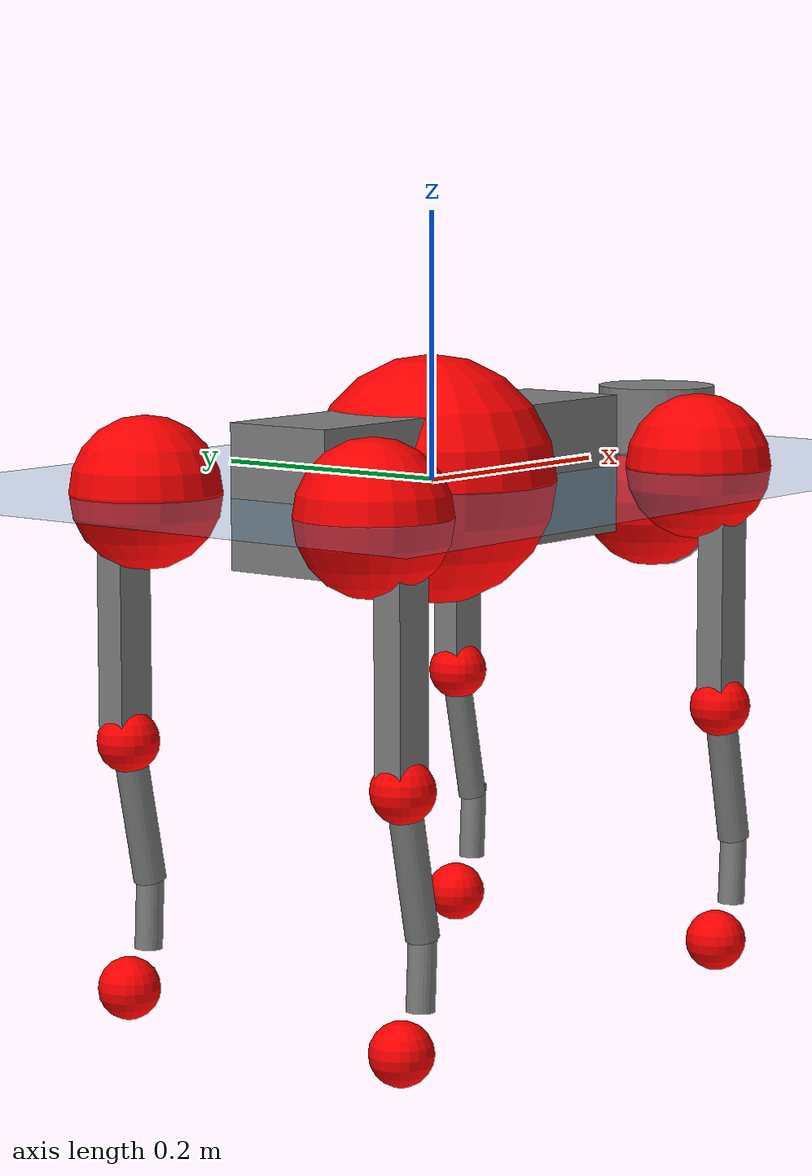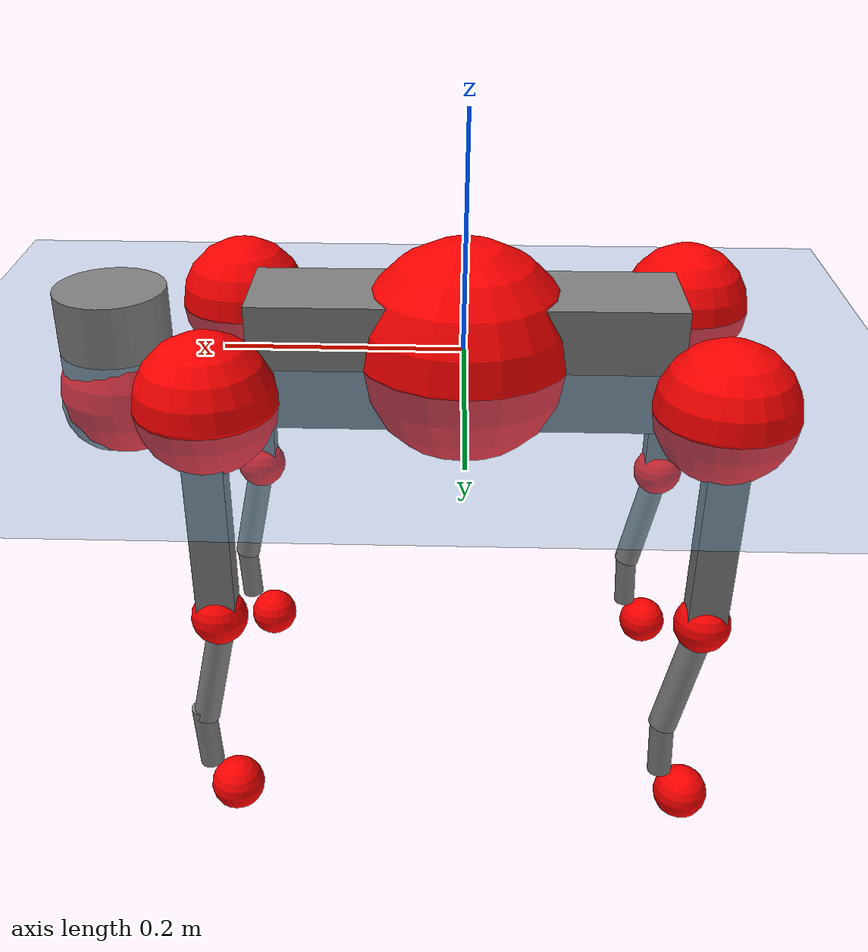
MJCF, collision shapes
<mujoco model="go2">
  <compiler angle="radian" assetdir="assets" balanceinertia="true" inertiafromgeom="false"/>

  <option timestep="0.005" density="1.2" viscosity="2e-05"/>

  <size nkey="1"/>

  <visual>
    <quality shadowsize="8192"/>
    <map shadowclip="0.5"/>
  </visual>

  <default>
    <default class="/">
      <geom contype="0" conaffinity="0" group="1" solref="-1000 -80"/>
      <site size="0.01 0.005 0.005" group="5"/>
      <general forcelimited="true" biastype="affine" gainprm="20" biasprm="0 -20 -0.5"/>
      <default class="go2">
        <joint armature="0.01" damping="0.01" frictionloss="0.2"/>
        <geom condim="1" margin="0.001"/>
        <default class="visual">
          <geom type="mesh" group="2"/>
        </default>
        <default class="collision">
          <geom group="3"/>
          <default class="foot">
            <geom size="0.022 0 0" condim="6" priority="1" friction="0.8 0.02 0.01" solimp="0.015 1 0.022"/>
          </default>
        </default>
        <default class="reward_collision_sphere">
          <geom group="5" rgba="1 0 0 1"/>
        </default>
      </default>
    </default>
  </default>

  <asset>
    <texture type="skybox" colorspace="auto" name="//unnamed_texture_0" builtin="gradient" rgb1="0.95 0.95 0.95" rgb2="0.95 0.95 0.95" width="100" height="600"/>
    <texture type="2d" colorspace="auto" name="texplane" builtin="checker" rgb1="0.345 0.575 0.748" rgb2="0.345 0.575 0.748" markrgb="1 1 1" width="512" height="512"/>
    <material name="MatPlane" class="/" texture="texplane" texuniform="true" texrepeat="2 2" specular="0.9"/>
    <material name="metal" class="/" rgba="0.9 0.95 0.95 1"/>
    <material name="black" class="/" rgba="0 0 0 1"/>
    <material name="white" class="/"/>
    <material name="gray" class="/" rgba="0.671705 0.692426 0.77427 1"/>
    <mesh name="base_0" class="/" file="base_0.obj"/>
    <mesh name="base_1" class="/" file="base_1.obj"/>
    <mesh name="base_2" class="/" file="base_2.obj"/>
    <mesh name="base_3" class="/" file="base_3.obj"/>
    <mesh name="base_4" class="/" file="base_4.obj"/>
    <mesh name="hip_0" class="/" file="hip_0.obj"/>
    <mesh name="hip_1" class="/" file="hip_1.obj"/>
    <mesh name="thigh_0" class="/" file="thigh_0.obj"/>
    <mesh name="thigh_1" class="/" file="thigh_1.obj"/>
    <mesh name="thigh_mirror_0" class="/" file="thigh_mirror_0.obj"/>
    <mesh name="thigh_mirror_1" class="/" file="thigh_mirror_1.obj"/>
    <mesh name="calf_0" class="/" file="calf_0.obj"/>
    <mesh name="calf_1" class="/" file="calf_1.obj"/>
    <mesh name="calf_mirror_0" class="/" file="calf_mirror_0.obj"/>
    <mesh name="calf_mirror_1" class="/" file="calf_mirror_1.obj"/>
    <mesh name="foot" class="/" file="foot.obj"/>
  </asset>

  <worldbody>
    <geom name="floor" class="/" size="100 100 0.125" type="plane" group="0" material="MatPlane"/>
    <light name="toplight_shadow" class="/" pos="0 0 5" dir="0.0990148 0.0990148 -0.990148" type="directional" ambient="0.04 0.04 0.04" diffuse="0.55 0.55 0.55" specular="0.12 0.12 0.12"/>
    <light name="toplight_fill" class="/" pos="0 0 5" dir="0.0990148 0.0990148 -0.990148" type="directional" castshadow="false" ambient="0.04 0.04 0.04" diffuse="0.3 0.3 0.3" specular="0.08 0.08 0.08"/>
    <body name="trunk" childclass="go2" pos="-0.000286543 1.27052e-05 0.00027698" quat="1 4.2275e-05 -0.000189269 -0.000143237">
      <inertial pos="0.0215042 0.0001436 -0.00472068" quat="5.70412e-05 0.712786 0.00130412 0.70138" mass="5.65142" diaginertia="0.121412 0.061361 0.0125076"/>
      <joint name="//unnamed_joint_0" type="free" armature="0" damping="0" frictionloss="0"/>
      <geom name="//unnamed_geom_1" class="visual" material="black" mesh="base_0"/>
      <geom name="//unnamed_geom_2" class="visual" material="black" mesh="base_1"/>
      <geom name="//unnamed_geom_3" class="visual" material="black" mesh="base_2"/>
      <geom name="//unnamed_geom_4" class="visual" material="white" mesh="base_3"/>
      <geom name="//unnamed_geom_5" class="visual" material="gray" mesh="base_4"/>
      <geom name="trunk_1" class="collision" size="0.176509 0.0438693 0.0534877" type="box"/>
      <geom name="trunk_2" class="collision" size="0.046919 0.0422271" pos="0.292966 0 0.00874104" type="cylinder"/>
      <geom name="trunk_3" class="collision" size="0.0441039" pos="0.30119 0 -0.0524463"/>
      <geom name="//unnamed_geom_9" class="reward_collision_sphere" size="0.0938381"/>
      <geom name="//unnamed_geom_10" class="reward_collision_sphere" size="0.0563028" pos="0.287827 0 -0.0393347"/>
      <site name="imu" pos="-0.0239155 0.000262488 0.0357897" size="0.00938381"/>
      <camera name="track" pos="0 -1.82617 0" quat="0.707107 0.707107 0 0" mode="trackcom"/>
      <camera name="ego_camera" pos="0.320721 0 0.0393347" quat="-0.5 -0.5 0.5 0.5"/>
      <body name="FL_hip" pos="0.198118 0.043193 0.00103997" quat="1 0.000107207 -9.7825e-05 -4.90024e-05">
        <inertial pos="-0.00532953 0.00198363 -0.00037736" quat="0.496577 0.49895 0.505916 0.498508" mass="0.556737" diaginertia="0.00100874 0.000382001 0.000245202"/>
        <joint name="FL_hip_joint" pos="0 0 0" axis="0.999955 0.00487692 -0.00815648" range="-1.04232 1.04935" armature="0.00930353" damping="0.00575573" frictionloss="0.183271"/>
        <geom name="//unnamed_geom_11" class="visual" material="metal" mesh="hip_0"/>
        <geom name="//unnamed_geom_12" class="visual" material="gray" mesh="hip_1"/>
        <geom name="//unnamed_geom_13" class="collision" size="0.0431655 0.0187676" pos="0 0.0730468 0" quat="0.707107 0.707107 0 0" type="cylinder"/>
        <geom name="//unnamed_geom_14" class="reward_collision_sphere" size="0.0563028" pos="0 0.063916 0"/>
        <body name="FL_thigh" pos="0.000423153 0.0874064 0.000871143" quat="1 2.04556e-05 -0.000118211 0.000208436">
          <inertial pos="-0.00384165 -0.0201441 -0.02883" quat="0.82895 0.0840473 -0.0214744 0.552555" mass="0.947822" diaginertia="0.00682228 0.00369388 0.000446031"/>
          <joint name="FL_thigh_joint" pos="0 0 0" axis="-0.00185967 0.999996 -0.00188957" stiffness="0.0036199" range="-1.57168 3.49073" armature="0.00907924" damping="0.0112538" frictionloss="0.194776"/>
          <geom name="//unnamed_geom_15" class="visual" material="metal" mesh="thigh_0"/>
          <geom name="//unnamed_geom_16" class="visual" material="gray" mesh="thigh_1"/>
          <geom name="//unnamed_geom_17" class="collision" size="0.0999375 0.0114952 0.0159525" pos="0 0 -0.0930921" quat="0.707107 0 0.707107 0" type="box"/>
          <body name="FL_calf" pos="-0.00046572 -0.00062301 -0.186111" quat="1 0.000240828 0.000393197 -0.00012601">
            <inertial pos="0.00605022 -0.000847614 -0.122821" quat="0.710635 0.00157612 -0.00446722 0.703545" mass="0.195353" diaginertia="0.00170973 0.000917712 2.70213e-05"/>
            <joint name="FL_calf_joint" pos="0 0 0" axis="0.00167133 0.999998 0.000559664" stiffness="0.000906764" range="-2.72414 -0.838079" armature="0.00930583" damping="0.00751602" frictionloss="0.18504"/>
            <geom name="//unnamed_geom_18" class="visual" material="gray" mesh="calf_0"/>
            <geom name="//unnamed_geom_19" class="visual" material="black" mesh="calf_1"/>
            <geom name="FL_calf0" class="collision" size="0.0112606 0.0563028" pos="0.00822362 0 -0.0524463" quat="0.994493 0 -0.104807 0" type="cylinder"/>
            <geom name="//unnamed_geom_21" class="collision" size="0.0103222 0.0304974" pos="0.020559 0 -0.129367" quat="0.999688 0 0.0249974 0" type="cylinder"/>
            <geom name="//unnamed_geom_22" class="visual" pos="0 0 -0.186184" quat="1 0 0 0" material="black" mesh="foot"/>
            <geom name="FL_foot" class="foot" size="0.0164386" pos="-0.0020559 0 -0.186184"/>
            <geom name="//unnamed_geom_24" class="reward_collision_sphere" size="0.0234595"/>
            <geom name="//unnamed_geom_25" class="reward_collision_sphere" size="0.0234595" pos="-0.0020559 0 -0.186184"/>
            <site name="FL_foot" class="foot" pos="-0.0020559 0 -0.186184" size="0.00938381"/>
          </body>
        </body>
      </body>
      <body name="FR_hip" pos="0.199315 -0.0411832 0.000192413" quat="1 2.22308e-05 -2.35523e-05 -3.52546e-05">
        <inertial pos="-0.0049056 -0.00117846 -0.00105472" quat="0.495904 0.505915 0.502419 0.495686" mass="0.561222" diaginertia="0.0010189 0.00038311 0.000245305"/>
        <joint name="FR_hip_joint" pos="0 0 0" axis="0.99999 0.00438276 0.000451106" stiffness="0.0043465" range="-1.04927 1.04286" armature="0.00937994" damping="0.0139731" frictionloss="0.193127"/>
        <geom name="//unnamed_geom_26" class="visual" pos="0 3.39587e-10 1.45656e-08" quat="4.63268e-05 1 0 0" material="metal" mesh="hip_0"/>
        <geom name="//unnamed_geom_27" class="visual" pos="0 5.50512e-10 -3.60263e-08" quat="4.63268e-05 1 0 0" material="gray" mesh="hip_1"/>
        <geom name="//unnamed_geom_28" class="collision" size="0.0431655 0.0187676" pos="0 -0.0730468 0" quat="0.707107 0.707107 0 0" type="cylinder"/>
        <geom name="//unnamed_geom_29" class="reward_collision_sphere" size="0.0563028" pos="0 -0.063916 0"/>
        <body name="FR_thigh" pos="0.000567971 -0.0863811 -6.48731e-05" quat="1 -7.76187e-06 3.70306e-05 -8.5954e-05">
          <inertial pos="-0.00334532 0.0212417 -0.0280453" quat="0.551559 -0.0197425 0.08476 0.829583" mass="0.955731" diaginertia="0.00681349 0.00372722 0.00045038"/>
          <joint name="FR_thigh_joint" pos="0 0 0" axis="-0.00596324 -0.999978 0.0028775" stiffness="0.00034707" range="-3.48869 1.56047" armature="0.00915077" damping="0.0141407" frictionloss="0.191014"/>
          <geom name="//unnamed_geom_30" class="visual" material="metal" mesh="thigh_mirror_0"/>
          <geom name="//unnamed_geom_31" class="visual" material="gray" mesh="thigh_mirror_1"/>
          <geom name="//unnamed_geom_32" class="collision" size="0.0999375 0.0114952 0.0159525" pos="0 0 -0.0930921" quat="0.707107 0 0.707107 0" type="box"/>
          <body name="FR_calf" pos="-0.000354311 -0.000252963 -0.186347" quat="1 3.08773e-05 0.000165169 7.41053e-05">
            <inertial pos="0.00729735 0.00151717 -0.124543" quat="0.703034 -0.00488394 0.00053167 0.711139" mass="0.200655" diaginertia="0.00169698 0.000922769 2.72245e-05"/>
            <joint name="FR_calf_joint" pos="0 0 0" axis="-0.000488023 -1 0.000732037" range="0.832962 2.72535" armature="0.00936342" damping="0.0079943" frictionloss="0.184262"/>
            <geom name="//unnamed_geom_33" class="visual" material="gray" mesh="calf_mirror_0"/>
            <geom name="//unnamed_geom_34" class="visual" material="black" mesh="calf_mirror_1"/>
            <geom name="FR_calf0" class="collision" size="0.0121989 0.0563028" pos="0.0102795 0 -0.0524463" quat="0.995004 0 -0.0998334 0" type="cylinder"/>
            <geom name="//unnamed_geom_36" class="collision" size="0.0103222 0.0304974" pos="0.020559 0 -0.129367" quat="0.999688 0 0.0249974 0" type="cylinder"/>
            <geom name="//unnamed_geom_37" class="visual" pos="0 0 -0.186184" quat="1 0 0 0" material="black" mesh="foot"/>
            <geom name="FR_foot" class="foot" size="0.0220712" pos="-0.0020559 0 -0.186184"/>
            <geom name="//unnamed_geom_39" class="reward_collision_sphere" size="0.0234595"/>
            <geom name="//unnamed_geom_40" class="reward_collision_sphere" size="0.0234595" pos="-0.0020559 0 -0.186184"/>
            <site name="FR_foot" class="foot" pos="-0.0020559 0 -0.186184" size="0.00938381"/>
          </body>
        </body>
      </body>
      <body name="RL_hip" pos="-0.198011 0.0429258 0.000541296" quat="1 0.000465536 0.000160255 -3.17707e-05">
        <inertial pos="0.00559025 0.00160002 -0.000116099" quat="0.506965 0.498573 0.495725 0.498666" mass="0.56447" diaginertia="0.00101044 0.000379319 0.000246859"/>
        <joint name="RL_hip_joint" pos="0 0 0" axis="-0.999775 0.00661566 -0.0201373" stiffness="0.0003556" range="-1.0649 1.05068" armature="0.00938858" damping="0.0155746" frictionloss="0.185389"/>
        <geom name="//unnamed_geom_41" class="visual" pos="-1.34026e-09 0 -2.62722e-07" quat="4.63268e-05 0 1 0" material="metal" mesh="hip_0"/>
        <geom name="//unnamed_geom_42" class="visual" pos="-2.17272e-09 0 -2.32997e-07" quat="4.63268e-05 0 1 0" material="gray" mesh="hip_1"/>
        <geom name="//unnamed_geom_43" class="collision" size="0.0431655 0.0187676" pos="0 0.0730468 0" quat="0.707107 0.707107 0 0" type="cylinder"/>
        <geom name="//unnamed_geom_44" class="reward_collision_sphere" size="0.0563028" pos="0 0.063916 0"/>
        <body name="RL_thigh" pos="-0.00106324 0.0860273 0.00118181" quat="1 2.12262e-05 -1.81259e-05 1.75453e-05">
          <inertial pos="-0.00329303 -0.0198528 -0.0288383" quat="0.827921 0.0849976 -0.0176029 0.554088" mass="0.946546" diaginertia="0.00683028 0.00365805 0.000440515"/>
          <joint name="RL_thigh_joint" pos="0 0 0" axis="-6.31915e-05 1 -0.000608881" stiffness="9.65408e-05" range="-0.539839 4.52265" armature="0.00933164" damping="0.00930716" frictionloss="0.182753"/>
          <geom name="//unnamed_geom_45" class="visual" material="metal" mesh="thigh_0"/>
          <geom name="//unnamed_geom_46" class="visual" material="gray" mesh="thigh_1"/>
          <geom name="//unnamed_geom_47" class="collision" size="0.0999375 0.0114952 0.0159525" pos="0 0 -0.0930921" quat="0.707107 0 0.707107 0" type="box"/>
          <body name="RL_calf" pos="0.00100222 -0.00169244 -0.186615" quat="1 -9.16268e-05 7.4523e-05 0.000120508">
            <inertial pos="0.00612722 -0.000362891 -0.122643" quat="0.712163 0.00329388 -0.0025503 0.702001" mass="0.199491" diaginertia="0.00170367 0.000931113 2.71364e-05"/>
            <joint name="RL_calf_joint" pos="0 0 0" axis="0.00672055 0.999977 0.000382726" stiffness="0.00376222" range="-2.7119 -0.819885" armature="0.00960607" damping="0" frictionloss="0.194867"/>
            <geom name="//unnamed_geom_48" class="visual" material="gray" mesh="calf_0"/>
            <geom name="//unnamed_geom_49" class="visual" material="black" mesh="calf_1"/>
            <geom name="RL_calf0" class="collision" size="0.0121989 0.0563028" pos="0.0102795 0 -0.0524463" quat="0.995004 0 -0.0998334 0" type="cylinder"/>
            <geom name="//unnamed_geom_51" class="collision" size="0.0103222 0.0304974" pos="0.020559 0 -0.129367" quat="0.999688 0 0.0249974 0" type="cylinder"/>
            <geom name="//unnamed_geom_52" class="visual" pos="0 0 -0.186184" quat="1 0 0 0" material="black" mesh="foot"/>
            <geom name="RL_foot" class="foot" size="0.0181918" pos="-0.0020559 0 -0.186184"/>
            <geom name="//unnamed_geom_54" class="reward_collision_sphere" size="0.0234595"/>
            <geom name="//unnamed_geom_55" class="reward_collision_sphere" size="0.0234595" pos="-0.0020559 0 -0.186184"/>
            <site name="RL_foot" class="foot" pos="-0.0020559 0 -0.186184" size="0.00938381"/>
          </body>
        </body>
      </body>
      <body name="RR_hip" pos="-0.199317 -0.0432116 -0.00183087" quat="1 4.13646e-05 5.98342e-05 1.11479e-05">
        <inertial pos="0.00453704 -0.00233141 0.000227136" quat="0.498993 0.496976 0.497797 0.506181" mass="0.5588" diaginertia="0.00100167 0.000372885 0.000241514"/>
        <joint name="RR_hip_joint" pos="0 0 0" axis="-0.999997 -0.00134921 -0.00223406" range="-1.04691 1.05508" armature="0.00925783" damping="0.00581937" frictionloss="0.189445"/>
        <geom name="//unnamed_geom_56" class="visual" pos="1.33628e-09 3.39587e-10 -2.77287e-07" quat="2.14617e-09 4.63268e-05 4.63268e-05 -1" material="metal" mesh="hip_0"/>
        <geom name="//unnamed_geom_57" class="visual" pos="2.18256e-09 5.50512e-10 -1.96971e-07" quat="2.14617e-09 4.63268e-05 4.63268e-05 -1" material="gray" mesh="hip_1"/>
        <geom name="//unnamed_geom_58" class="collision" size="0.0431655 0.0187676" pos="0 -0.0730468 0" quat="0.707107 0.707107 0 0" type="cylinder"/>
        <geom name="//unnamed_geom_59" class="reward_collision_sphere" size="0.0563028" pos="0 -0.063916 0"/>
        <body name="RR_thigh" pos="0.000398961 -0.0880788 -0.00141385" quat="1 -5.28423e-05 -4.89509e-06 1.7751e-05">
          <inertial pos="-0.00322466 0.0206862 -0.0282603" quat="0.553482 -0.0202049 0.0826413 0.828505" mass="0.947152" diaginertia="0.00683654 0.00368384 0.000452563"/>
          <joint name="RR_thigh_joint" pos="0 0 0" axis="0.00199917 -0.999993 0.00308438" stiffness="0.00248325" range="-4.54159 0.528302" armature="0.00914926" damping="0.0166631" frictionloss="0.192524"/>
          <geom name="//unnamed_geom_60" class="visual" material="metal" mesh="thigh_mirror_0"/>
          <geom name="//unnamed_geom_61" class="visual" material="gray" mesh="thigh_mirror_1"/>
          <geom name="//unnamed_geom_62" class="collision" size="0.0999375 0.0114952 0.0159525" pos="0 0 -0.0930921" quat="0.707107 0 0.707107 0" type="box"/>
          <body name="RR_calf" pos="0.00103966 -0.000420926 -0.186798" quat="1 -3.47689e-05 -0.000141349 3.53033e-06">
            <inertial pos="0.0066113 0.000227217 -0.123659" quat="0.704174 -0.00408834 0.00158381 0.710014" mass="0.198797" diaginertia="0.00173543 0.000926982 2.72471e-05"/>
            <joint name="RR_calf_joint" pos="0 0 0" axis="-0.00171408 -0.999996 0.00204824" range="0.832013 2.72854" armature="0.00935187" damping="0.00929528" frictionloss="0.189119"/>
            <geom name="//unnamed_geom_63" class="visual" material="gray" mesh="calf_mirror_0"/>
            <geom name="//unnamed_geom_64" class="visual" material="black" mesh="calf_mirror_1"/>
            <geom name="RR_calf0" class="collision" size="0.0121989 0.0563028" pos="0.0102795 0 -0.0524463" quat="0.995004 0 -0.0998334 0" type="cylinder"/>
            <geom name="//unnamed_geom_66" class="collision" size="0.0103222 0.0304974" pos="0.020559 0 -0.129367" quat="0.999688 0 0.0249974 0" type="cylinder"/>
            <geom name="//unnamed_geom_67" class="visual" pos="0 0 -0.186184" quat="1 0 0 0" material="black" mesh="foot"/>
            <geom name="RR_foot" class="foot" size="0.0217407" pos="-0.0020559 0 -0.186184"/>
            <geom name="//unnamed_geom_69" class="reward_collision_sphere" size="0.0234595"/>
            <geom name="//unnamed_geom_70" class="reward_collision_sphere" size="0.0234595" pos="-0.0020559 0 -0.186184"/>
            <site name="RR_foot" class="foot" pos="-0.0020559 0 -0.186184" size="0.00938381"/>
          </body>
        </body>
      </body>
    </body>
  </worldbody>

  <contact>
    <pair class="/" geom1="floor" geom2="FL_foot" name="//unnamed_contact_0"/>
    <pair class="/" geom1="floor" geom2="FR_foot" name="//unnamed_contact_1"/>
    <pair class="/" geom1="floor" geom2="RL_foot" name="//unnamed_contact_2"/>
    <pair class="/" geom1="floor" geom2="RR_foot" name="//unnamed_contact_3"/>
  </contact>

  <actuator>
    <general name="FL_hip" class="/" joint="FL_hip_joint" forcerange="-22.2391 22.2391" gainprm="18.866" biasprm="0 -18.866 -0.476231"/>
    <general name="FL_thigh" class="/" joint="FL_thigh_joint" forcerange="-22.7153 22.7153" gainprm="18.866" biasprm="0 -18.866 -0.476231"/>
    <general name="FL_calf" class="/" joint="FL_calf_joint" forcerange="-41.5847 41.5847" gainprm="18.866" biasprm="0 -18.866 -0.476231"/>
    <general name="FR_hip" class="/" joint="FR_hip_joint" forcerange="-22.2282 22.2282" gainprm="18.866" biasprm="0 -18.866 -0.476231"/>
    <general name="FR_thigh" class="/" joint="FR_thigh_joint" forcerange="-21.9865 21.9865" gainprm="18.866" biasprm="0 -18.866 -0.476231"/>
    <general name="FR_calf" class="/" joint="FR_calf_joint" forcerange="-41.1056 41.1056" gainprm="18.866" biasprm="0 -18.866 -0.476231"/>
    <general name="RL_hip" class="/" joint="RL_hip_joint" forcerange="-22.2749 22.2749" gainprm="18.866" biasprm="0 -18.866 -0.476231"/>
    <general name="RL_thigh" class="/" joint="RL_thigh_joint" forcerange="-21.5547 21.5547" gainprm="18.866" biasprm="0 -18.866 -0.476231"/>
    <general name="RL_calf" class="/" joint="RL_calf_joint" forcerange="-43.2366 43.2366" gainprm="18.866" biasprm="0 -18.866 -0.476231"/>
    <general name="RR_hip" class="/" joint="RR_hip_joint" forcerange="-22.4258 22.4258" gainprm="18.866" biasprm="0 -18.866 -0.476231"/>
    <general name="RR_thigh" class="/" joint="RR_thigh_joint" forcerange="-22.5974 22.5974" gainprm="18.866" biasprm="0 -18.866 -0.476231"/>
    <general name="RR_calf" class="/" joint="RR_calf_joint" forcerange="-41.7587 41.7587" gainprm="18.866" biasprm="0 -18.866 -0.476231"/>
  </actuator>

  <sensor>
    <gyro site="imu" name="imu_angular_velocity"/>
    <velocimeter site="imu" name="imu_linear_velocity"/>
    <framelinvel objtype="site" objname="FL_foot" name="FL_foot_global_linear_velocity"/>
    <framelinvel objtype="site" objname="FR_foot" name="FR_foot_global_linear_velocity"/>
    <framelinvel objtype="site" objname="RL_foot" name="RL_foot_global_linear_velocity"/>
    <framelinvel objtype="site" objname="RR_foot" name="RR_foot_global_linear_velocity"/>
  </sensor>

  <keyframe>
    <key name="home" qpos="0 0 0.325 1 0 0 0 0.1 0.8 -1.5 -0.1 -0.8 1.5 -0.1 0.8 -1.5 0.1 -0.8 1.5"/>
  </keyframe>
</mujoco>
